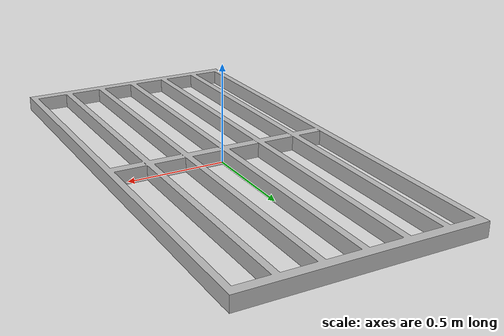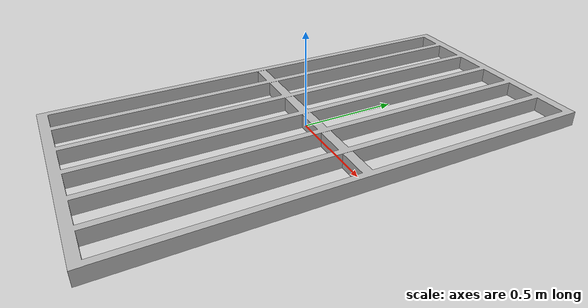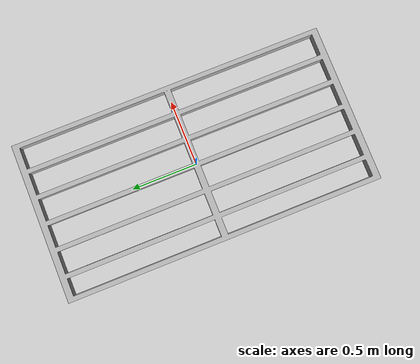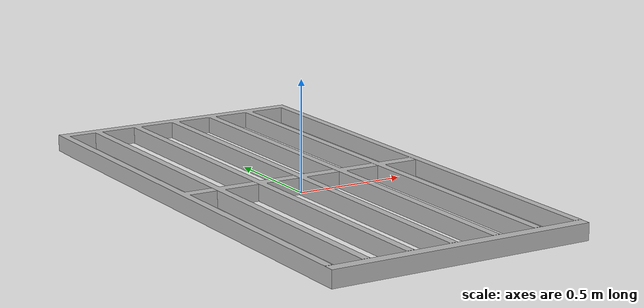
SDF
<?xml version="1.0" ?>
<sdf version="1.6">
  <model name="frame">
    <static>true</static>
    <link name="link">
      <collision name="collision">
        <geometry>
          <mesh>
            <scale>1 1 1</scale>
            <uri>model://frame/meshes/frame.dae</uri>
          </mesh>
        </geometry>
      </collision>
      <visual name="visual">
        <geometry>
          <mesh>
            <scale>1 1 1</scale>
            <uri>model://frame/meshes/frame.dae</uri>
          </mesh>
        </geometry>
      </visual>
    </link>
  </model>
</sdf>
